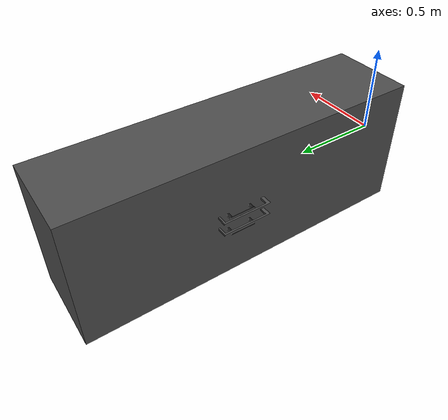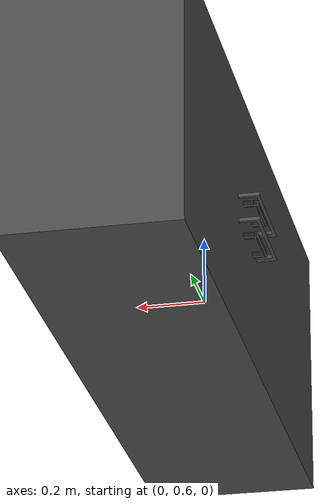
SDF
<?xml version='1.0'?>
<sdf version='1.6'>
  <model name='Tall-Cabinet'>
    <link name='link_0'>
      <visual name='visual'>
        <pose frame=''>0 0 0 0 -0 0</pose>
        <geometry>
          <mesh>
            <uri>model://Tall-Cabinet/meshes/3d-model.obj</uri>
            <scale>0.0243 0.025 0.0265</scale>
          </mesh>
        </geometry>
        <material>
          <lighting>1</lighting>
          <script>
	    <name>Gazebo/DarkGrey</name>
            <uri>file://media/materials/scripts/gazebo.material</uri>
          </script>
	  <emissive>0.05 0.05 0.05 1</emissive>
        </material>
        <transparency>0</transparency>
        <cast_shadows>1</cast_shadows>
      </visual>
      <collision name='collision'>
        <laser_retro>0</laser_retro>
        <max_contacts>10</max_contacts>
        <pose frame=''>0 0 0 0 -0 0</pose>
        <geometry>
          <mesh>
            <uri>>model://Tall-Cabinet/meshes/3d-model.obj</uri>
            <scale>0.0243 0.025 0.0265</scale>
          </mesh>
        </geometry>
      </collision>
    </link>
    <static>1</static>
    <allow_auto_disable>1</allow_auto_disable>
    <include>
	<name>DoorHandle1</name>
	<uri>model://DoorHandle</uri>
	<size>1 1 1</size>
	<pose>-0.24 1.1 0.034 1.57 0 3.14</pose>
      </include>
      <joint name="handle_top_joint" type="fixed">
	<child>DoorHandle1::link_2</child>
	<parent>link_1</parent>
      </joint>
     <include>
	<name>DoorHandle2</name>
	<uri>model://DoorHandle</uri>
	<pose>-0.24 1.1 -0.061 1.57 0 3.14</pose>
      </include>
      <joint name="handle_middle_joint" type="fixed">
	<child>DoorHandle2::link_2</child>
	<parent>link_1</parent>
      </joint>
  </model>
</sdf>

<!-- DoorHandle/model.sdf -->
<sdf version='1.6'>
  <model name='DoorHandle'>
    <link name='link_2'>
      <pose frame=''>0.013333 0 -0 0 -0 0</pose>
      <visual name='visual'>
        <pose frame=''>0 0 0 0 -0 0</pose>
        <geometry>
          <box>
            <size>0.01 0.015 0.14</size>
          </box>
        </geometry>
        <material>
          <lighting>1</lighting>
          <script>
            <name>Gazebo/Black</name>
            <uri>file://media/materials/scripts/gazebo.material</uri>
          </script>
          <shader type='pixel'>
            <normal_map>__default__</normal_map>
          </shader>
	  <ambient>0 0 0 1</ambient>
	  <specular>0 0 0 1</specular>
	  <diffuse>0 0 0 1</diffuse>
	  <emissive>0 0 0 1</emissive>
        </material>
        <transparency>0</transparency>
        <cast_shadows>1</cast_shadows>
      </visual>
      <collision name='collision'>
        <laser_retro>0</laser_retro>
        <max_contacts>10</max_contacts>
        <pose frame=''>0 0 0 0 -0 0</pose>
        <geometry>
          <box>
            <size>0.01 0.015 0.14</size>
          </box>
        </geometry>
      </collision>
    </link>
    <link name='link_4'>
      <pose frame=''>-0.006667 0 -0.065 0 -0 0</pose>
      <visual name='visual'>
        <pose frame=''>0 0 0 0 -0 0</pose>
        <geometry>
          <box>
            <size>0.03 0.015 0.01</size>
          </box>
        </geometry>
        <material>
          <lighting>1</lighting>
          <script>
            <name>Gazebo/Black</name>
            <uri>file://media/materials/scripts/gazebo.material</uri>
          </script>
          <shader type='pixel'>
            <normal_map>__default__</normal_map>
          </shader>
	  <ambient>0 0 0 1</ambient>
	  <specular>0 0 0 1</specular>
	  <diffuse>0 0 0 1</diffuse>
	  <emissive>0 0 0 1</emissive>
        </material>
        <transparency>0</transparency>
        <cast_shadows>1</cast_shadows>
      </visual>
      <collision name='collision'>
        <laser_retro>0</laser_retro>
        <max_contacts>10</max_contacts>
        <pose frame=''>0 0 0 0 -0 0</pose>
        <geometry>
          <box>
            <size>0.03 0.015 0.01</size>
          </box>
        </geometry>
      </collision>
    </link>
    <link name='link_5'>
      <pose frame=''>-0.006667 0 0.065001 0 -0 0</pose>
      <visual name='visual'>
        <pose frame=''>0 0 0 0 -0 0</pose>
        <geometry>
          <box>
            <size>0.03 0.015 0.01</size>
          </box>
        </geometry>
        <material>
          <lighting>1</lighting>
          <script>
            <name>Gazebo/Black</name>
            <uri>file://media/materials/scripts/gazebo.material</uri>
          </script>
	  <ambient>0 0 0 1</ambient>
	  <specular>0 0 0 1</specular>
	  <diffuse>0 0 0 1</diffuse>
	  <emissive>0 0 0 1</emissive>
          <shader type='pixel'>
            <normal_map>__default__</normal_map>
          </shader>
        </material>
        <transparency>0</transparency>
        <cast_shadows>1</cast_shadows>
      </visual>
      <collision name='collision'>
        <laser_retro>0</laser_retro>
        <max_contacts>10</max_contacts>
        <pose frame=''>0 0 0 0 -0 0</pose>
        <geometry>
          <box>
            <size>0.03 0.015 0.01</size>
          </box>
        </geometry>
      </collision>
    </link>
    <joint name='link_2_JOINT_2' type='fixed'>
      <parent>link_2</parent>
      <child>link_4</child>
      <pose frame=''>0 0 0 0 -0 0</pose>
    </joint>
    <joint name='link_5_JOINT_1' type='fixed'>
      <parent>link_5</parent>
      <child>link_2</child>
      <pose frame=''>0 0 0 0 -0 0</pose>
    </joint>
    <static>1</static>
    <allow_auto_disable>1</allow_auto_disable>
  </model>
</sdf>
